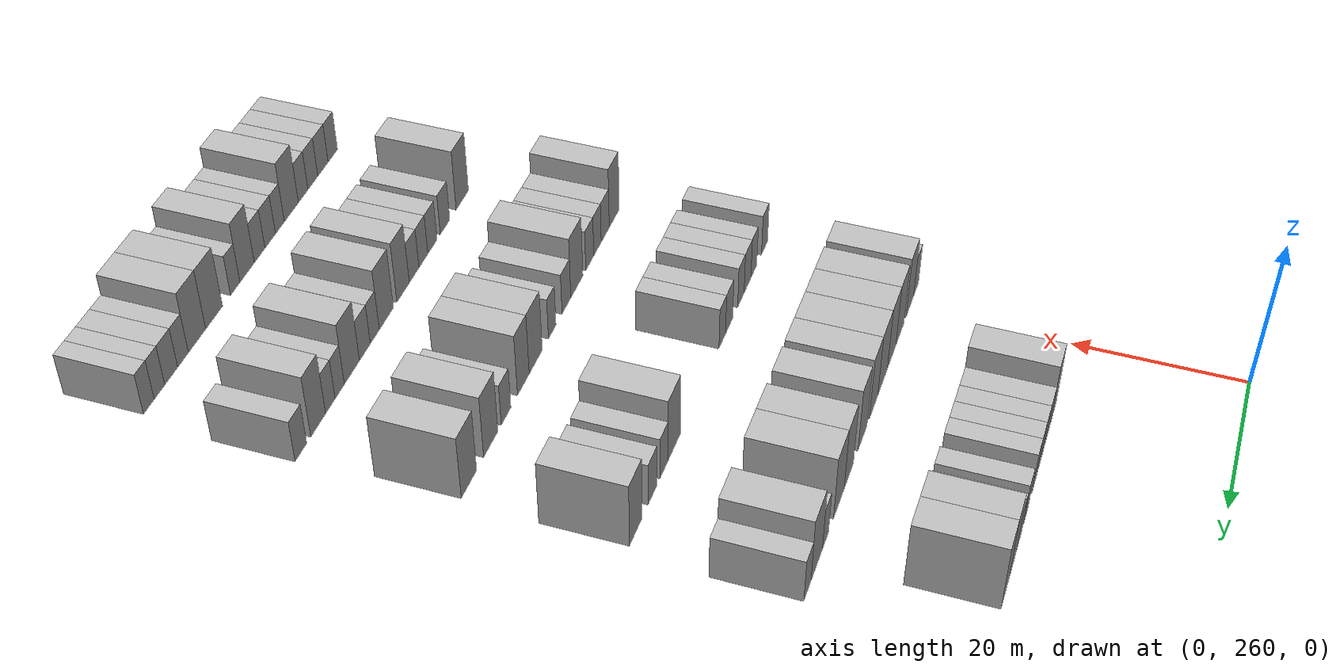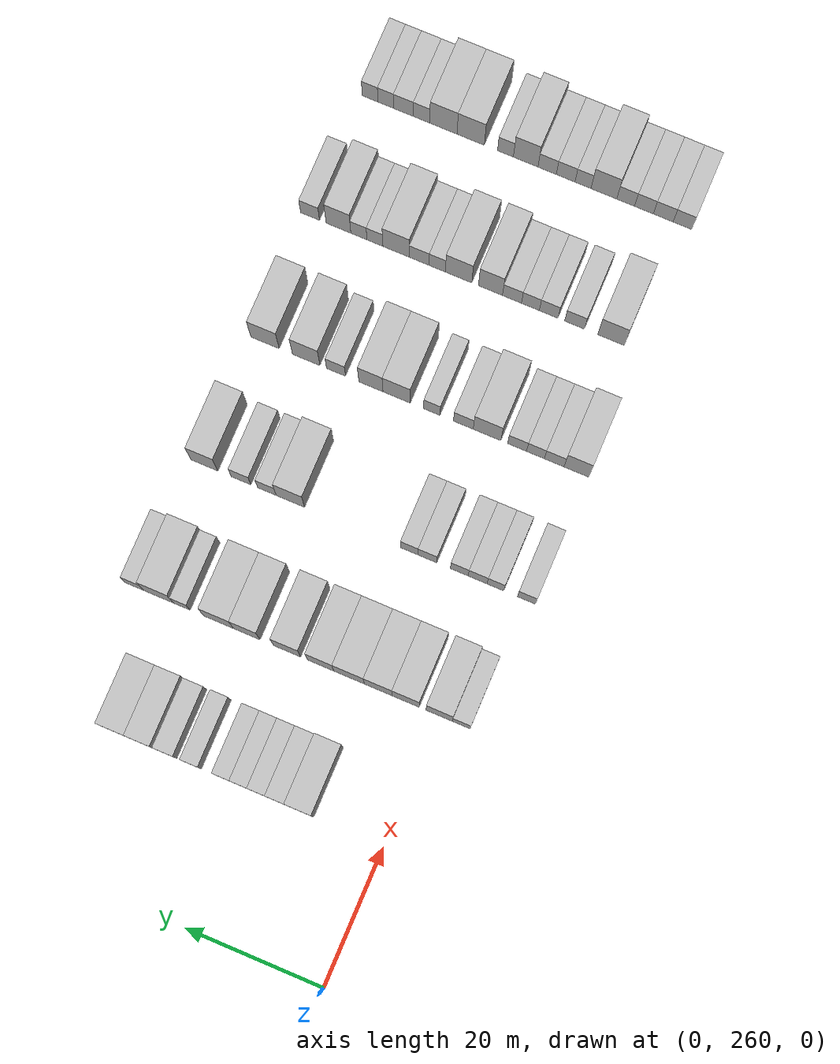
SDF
<sdf version="1.6">
 <world name="default">
  <model name="building_146">
   <static>1</static>
   <pose>25.0000 272.0109 0 0.000000 0.000000 0.000000</pose>
   <link name="link">
    <pose>0 0 4.50 0 0 0</pose>
    <collision name="collision"><geometry><box><size>10.0000 3.8548 9.0000</size></box></geometry></collision>
    <visual name="visual">
     <cast_shadows>0</cast_shadows>
     <geometry><box><size>10.0000 3.8548 9.0000</size></box></geometry>
     <material>
      <script>
       <uri>model://HANNAS_wall/materials/scripts</uri>
       <uri>model://HANNAS_wall/materials/textures</uri>
       <name>vrc/HANNAS_wall</name>
      </script>
     </material>
    </visual>
   </link>
  </model>
  <model name="building_147">
   <static>1</static>
   <pose>25.0000 275.4106 0 0.000000 0.000000 0.000000</pose>
   <link name="link">
    <pose>0 0 3.00 0 0 0</pose>
    <collision name="collision"><geometry><box><size>10.0000 2.9445 6.0000</size></box></geometry></collision>
    <visual name="visual">
     <cast_shadows>0</cast_shadows>
     <geometry><box><size>10.0000 2.9445 6.0000</size></box></geometry>
     <material>
      <script>
       <uri>model://HANNAS_wall/materials/scripts</uri>
       <uri>model://HANNAS_wall/materials/textures</uri>
       <name>vrc/HANNAS_wall</name>
      </script>
     </material>
    </visual>
   </link>
  </model>
  <model name="building_148">
   <static>1</static>
   <pose>25.0000 278.1679 0 0.000000 0.000000 0.000000</pose>
   <link name="link">
    <pose>0 0 3.00 0 0 0</pose>
    <collision name="collision"><geometry><box><size>10.0000 2.5701 6.0000</size></box></geometry></collision>
    <visual name="visual">
     <cast_shadows>0</cast_shadows>
     <geometry><box><size>10.0000 2.5701 6.0000</size></box></geometry>
     <material>
      <script>
       <uri>model://HANNAS_wall/materials/scripts</uri>
       <uri>model://HANNAS_wall/materials/textures</uri>
       <name>vrc/HANNAS_wall</name>
      </script>
     </material>
    </visual>
   </link>
  </model>
  <model name="building_149">
   <static>1</static>
   <pose>25.0000 280.7161 0 0.000000 0.000000 0.000000</pose>
   <link name="link">
    <pose>0 0 3.00 0 0 0</pose>
    <collision name="collision"><geometry><box><size>10.0000 2.5264 6.0000</size></box></geometry></collision>
    <visual name="visual">
     <cast_shadows>0</cast_shadows>
     <geometry><box><size>10.0000 2.5264 6.0000</size></box></geometry>
     <material>
      <script>
       <uri>model://HANNAS_wall/materials/scripts</uri>
       <uri>model://HANNAS_wall/materials/textures</uri>
       <name>vrc/HANNAS_wall</name>
      </script>
     </material>
    </visual>
   </link>
  </model>
  <model name="building_150">
   <static>1</static>
   <pose>25.0000 283.2397 0 0.000000 0.000000 0.000000</pose>
   <link name="link">
    <pose>0 0 3.00 0 0 0</pose>
    <collision name="collision"><geometry><box><size>10.0000 2.5208 6.0000</size></box></geometry></collision>
    <visual name="visual">
     <cast_shadows>0</cast_shadows>
     <geometry><box><size>10.0000 2.5208 6.0000</size></box></geometry>
     <material>
      <script>
       <uri>model://HANNAS_wall/materials/scripts</uri>
       <uri>model://HANNAS_wall/materials/textures</uri>
       <name>vrc/HANNAS_wall</name>
      </script>
     </material>
    </visual>
   </link>
  </model>
  <model name="building_151">
   <static>1</static>
   <pose>25.0000 287.7942 0 0.000000 0.000000 0.000000</pose>
   <link name="link">
    <pose>0 0 3.00 0 0 0</pose>
    <collision name="collision"><geometry><box><size>10.0000 2.5880 6.0000</size></box></geometry></collision>
    <visual name="visual">
     <cast_shadows>0</cast_shadows>
     <geometry><box><size>10.0000 2.5880 6.0000</size></box></geometry>
     <material>
      <script>
       <uri>model://HANNAS_wall/materials/scripts</uri>
       <uri>model://HANNAS_wall/materials/textures</uri>
       <name>vrc/HANNAS_wall</name>
      </script>
     </material>
    </visual>
   </link>
  </model>
  <model name="building_152">
   <static>1</static>
   <pose>25.0000 291.5689 0 0.000000 0.000000 0.000000</pose>
   <link name="link">
    <pose>0 0 3.00 0 0 0</pose>
    <collision name="collision"><geometry><box><size>10.0000 2.9614 6.0000</size></box></geometry></collision>
    <visual name="visual">
     <cast_shadows>0</cast_shadows>
     <geometry><box><size>10.0000 2.9614 6.0000</size></box></geometry>
     <material>
      <script>
       <uri>model://HANNAS_wall/materials/scripts</uri>
       <uri>model://HANNAS_wall/materials/textures</uri>
       <name>vrc/HANNAS_wall</name>
      </script>
     </material>
    </visual>
   </link>
  </model>
  <model name="building_153">
   <static>1</static>
   <pose>25.0000 294.9100 0 0.000000 0.000000 0.000000</pose>
   <link name="link">
    <pose>0 0 4.50 0 0 0</pose>
    <collision name="collision"><geometry><box><size>10.0000 3.7209 9.0000</size></box></geometry></collision>
    <visual name="visual">
     <cast_shadows>0</cast_shadows>
     <geometry><box><size>10.0000 3.7209 9.0000</size></box></geometry>
     <material>
      <script>
       <uri>model://HANNAS_wall/materials/scripts</uri>
       <uri>model://HANNAS_wall/materials/textures</uri>
       <name>vrc/HANNAS_wall</name>
      </script>
     </material>
    </visual>
   </link>
  </model>
  <model name="building_154">
   <static>1</static>
   <pose>25.0000 298.8138 0 0.000000 0.000000 0.000000</pose>
   <link name="link">
    <pose>0 0 4.50 0 0 0</pose>
    <collision name="collision"><geometry><box><size>10.0000 4.0865 9.0000</size></box></geometry></collision>
    <visual name="visual">
     <cast_shadows>0</cast_shadows>
     <geometry><box><size>10.0000 4.0865 9.0000</size></box></geometry>
     <material>
      <script>
       <uri>model://HANNAS_wall/materials/scripts</uri>
       <uri>model://HANNAS_wall/materials/textures</uri>
       <name>vrc/HANNAS_wall</name>
      </script>
     </material>
    </visual>
   </link>
  </model>
  <model name="building_317">
   <static>1</static>
   <pose>44.0000 256.6903 0 0.000000 0.000000 0.000000</pose>
   <link name="link">
    <pose>0 0 3.00 0 0 0</pose>
    <collision name="collision"><geometry><box><size>10.0000 2.5984 6.0000</size></box></geometry></collision>
    <visual name="visual">
     <cast_shadows>0</cast_shadows>
     <geometry><box><size>10.0000 2.5984 6.0000</size></box></geometry>
     <material>
      <script>
       <uri>model://HANNAS_wall/materials/scripts</uri>
       <uri>model://HANNAS_wall/materials/textures</uri>
       <name>vrc/HANNAS_wall</name>
      </script>
     </material>
    </visual>
   </link>
  </model>
  <model name="building_318">
   <static>1</static>
   <pose>44.0000 259.9078 0 0.000000 0.000000 0.000000</pose>
   <link name="link">
    <pose>0 0 4.50 0 0 0</pose>
    <collision name="collision"><geometry><box><size>10.0000 3.8366 9.0000</size></box></geometry></collision>
    <visual name="visual">
     <cast_shadows>0</cast_shadows>
     <geometry><box><size>10.0000 3.8366 9.0000</size></box></geometry>
     <material>
      <script>
       <uri>model://HANNAS_wall/materials/scripts</uri>
       <uri>model://HANNAS_wall/materials/textures</uri>
       <name>vrc/HANNAS_wall</name>
      </script>
     </material>
    </visual>
   </link>
  </model>
  <model name="building_319">
   <static>1</static>
   <pose>44.0000 264.7968 0 0.000000 0.000000 0.000000</pose>
   <link name="link">
    <pose>0 0 4.50 0 0 0</pose>
    <collision name="collision"><geometry><box><size>10.0000 3.9414 9.0000</size></box></geometry></collision>
    <visual name="visual">
     <cast_shadows>0</cast_shadows>
     <geometry><box><size>10.0000 3.9414 9.0000</size></box></geometry>
     <material>
      <script>
       <uri>model://HANNAS_wall/materials/scripts</uri>
       <uri>model://HANNAS_wall/materials/textures</uri>
       <name>vrc/HANNAS_wall</name>
      </script>
     </material>
    </visual>
   </link>
  </model>
  <model name="building_320">
   <static>1</static>
   <pose>44.0000 268.8081 0 0.000000 0.000000 0.000000</pose>
   <link name="link">
    <pose>0 0 4.50 0 0 0</pose>
    <collision name="collision"><geometry><box><size>10.0000 4.0811 9.0000</size></box></geometry></collision>
    <visual name="visual">
     <cast_shadows>0</cast_shadows>
     <geometry><box><size>10.0000 4.0811 9.0000</size></box></geometry>
     <material>
      <script>
       <uri>model://HANNAS_wall/materials/scripts</uri>
       <uri>model://HANNAS_wall/materials/textures</uri>
       <name>vrc/HANNAS_wall</name>
      </script>
     </material>
    </visual>
   </link>
  </model>
  <model name="building_321">
   <static>1</static>
   <pose>44.0000 273.0856 0 0.000000 0.000000 0.000000</pose>
   <link name="link">
    <pose>0 0 4.50 0 0 0</pose>
    <collision name="collision"><geometry><box><size>10.0000 4.4741 9.0000</size></box></geometry></collision>
    <visual name="visual">
     <cast_shadows>0</cast_shadows>
     <geometry><box><size>10.0000 4.4741 9.0000</size></box></geometry>
     <material>
      <script>
       <uri>model://HANNAS_wall/materials/scripts</uri>
       <uri>model://HANNAS_wall/materials/textures</uri>
       <name>vrc/HANNAS_wall</name>
      </script>
     </material>
    </visual>
   </link>
  </model>
  <model name="building_322">
   <static>1</static>
   <pose>44.0000 277.2648 0 0.000000 0.000000 0.000000</pose>
   <link name="link">
    <pose>0 0 4.50 0 0 0</pose>
    <collision name="collision"><geometry><box><size>10.0000 3.8842 9.0000</size></box></geometry></collision>
    <visual name="visual">
     <cast_shadows>0</cast_shadows>
     <geometry><box><size>10.0000 3.8842 9.0000</size></box></geometry>
     <material>
      <script>
       <uri>model://HANNAS_wall/materials/scripts</uri>
       <uri>model://HANNAS_wall/materials/textures</uri>
       <name>vrc/HANNAS_wall</name>
      </script>
     </material>
    </visual>
   </link>
  </model>
  <model name="building_323">
   <static>1</static>
   <pose>44.0000 282.1938 0 0.000000 0.000000 0.000000</pose>
   <link name="link">
    <pose>0 0 4.50 0 0 0</pose>
    <collision name="collision"><geometry><box><size>10.0000 3.9739 9.0000</size></box></geometry></collision>
    <visual name="visual">
     <cast_shadows>0</cast_shadows>
     <geometry><box><size>10.0000 3.9739 9.0000</size></box></geometry>
     <material>
      <script>
       <uri>model://HANNAS_wall/materials/scripts</uri>
       <uri>model://HANNAS_wall/materials/textures</uri>
       <name>vrc/HANNAS_wall</name>
      </script>
     </material>
    </visual>
   </link>
  </model>
  <model name="building_324">
   <static>1</static>
   <pose>44.0000 288.1492 0 0.000000 0.000000 0.000000</pose>
   <link name="link">
    <pose>0 0 4.50 0 0 0</pose>
    <collision name="collision"><geometry><box><size>10.0000 3.9369 9.0000</size></box></geometry></collision>
    <visual name="visual">
     <cast_shadows>0</cast_shadows>
     <geometry><box><size>10.0000 3.9369 9.0000</size></box></geometry>
     <material>
      <script>
       <uri>model://HANNAS_wall/materials/scripts</uri>
       <uri>model://HANNAS_wall/materials/textures</uri>
       <name>vrc/HANNAS_wall</name>
      </script>
     </material>
    </visual>
   </link>
  </model>
  <model name="building_325">
   <static>1</static>
   <pose>44.0000 292.3224 0 0.000000 0.000000 0.000000</pose>
   <link name="link">
    <pose>0 0 4.50 0 0 0</pose>
    <collision name="collision"><geometry><box><size>10.0000 4.4095 9.0000</size></box></geometry></collision>
    <visual name="visual">
     <cast_shadows>0</cast_shadows>
     <geometry><box><size>10.0000 4.4095 9.0000</size></box></geometry>
     <material>
      <script>
       <uri>model://HANNAS_wall/materials/scripts</uri>
       <uri>model://HANNAS_wall/materials/textures</uri>
       <name>vrc/HANNAS_wall</name>
      </script>
     </material>
    </visual>
   </link>
  </model>
  <model name="building_326">
   <static>1</static>
   <pose>44.0000 297.7490 0 0.000000 0.000000 0.000000</pose>
   <link name="link">
    <pose>0 0 3.00 0 0 0</pose>
    <collision name="collision"><geometry><box><size>10.0000 2.4437 6.0000</size></box></geometry></collision>
    <visual name="visual">
     <cast_shadows>0</cast_shadows>
     <geometry><box><size>10.0000 2.4437 6.0000</size></box></geometry>
     <material>
      <script>
       <uri>model://HANNAS_wall/materials/scripts</uri>
       <uri>model://HANNAS_wall/materials/textures</uri>
       <name>vrc/HANNAS_wall</name>
      </script>
     </material>
    </visual>
   </link>
  </model>
  <model name="building_327">
   <static>1</static>
   <pose>44.0000 301.1935 0 0.000000 0.000000 0.000000</pose>
   <link name="link">
    <pose>0 0 4.50 0 0 0</pose>
    <collision name="collision"><geometry><box><size>10.0000 4.4454 9.0000</size></box></geometry></collision>
    <visual name="visual">
     <cast_shadows>0</cast_shadows>
     <geometry><box><size>10.0000 4.4454 9.0000</size></box></geometry>
     <material>
      <script>
       <uri>model://HANNAS_wall/materials/scripts</uri>
       <uri>model://HANNAS_wall/materials/textures</uri>
       <name>vrc/HANNAS_wall</name>
      </script>
     </material>
    </visual>
   </link>
  </model>
  <model name="building_328">
   <static>1</static>
   <pose>44.0000 304.7822 0 0.000000 0.000000 0.000000</pose>
   <link name="link">
    <pose>0 0 3.00 0 0 0</pose>
    <collision name="collision"><geometry><box><size>10.0000 2.7319 6.0000</size></box></geometry></collision>
    <visual name="visual">
     <cast_shadows>0</cast_shadows>
     <geometry><box><size>10.0000 2.7319 6.0000</size></box></geometry>
     <material>
      <script>
       <uri>model://HANNAS_wall/materials/scripts</uri>
       <uri>model://HANNAS_wall/materials/textures</uri>
       <name>vrc/HANNAS_wall</name>
      </script>
     </material>
    </visual>
   </link>
  </model>
  <model name="building_491">
   <static>1</static>
   <pose>63.0000 255.0812 0 0.000000 0.000000 0.000000</pose>
   <link name="link">
    <pose>0 0 3.00 0 0 0</pose>
    <collision name="collision"><geometry><box><size>10.0000 2.6312 6.0000</size></box></geometry></collision>
    <visual name="visual">
     <cast_shadows>0</cast_shadows>
     <geometry><box><size>10.0000 2.6312 6.0000</size></box></geometry>
     <material>
      <script>
       <uri>model://HANNAS_wall/materials/scripts</uri>
       <uri>model://HANNAS_wall/materials/textures</uri>
       <name>vrc/HANNAS_wall</name>
      </script>
     </material>
    </visual>
   </link>
  </model>
  <model name="building_492">
   <static>1</static>
   <pose>63.0000 259.6245 0 0.000000 0.000000 0.000000</pose>
   <link name="link">
    <pose>0 0 3.00 0 0 0</pose>
    <collision name="collision"><geometry><box><size>10.0000 2.4554 6.0000</size></box></geometry></collision>
    <visual name="visual">
     <cast_shadows>0</cast_shadows>
     <geometry><box><size>10.0000 2.4554 6.0000</size></box></geometry>
     <material>
      <script>
       <uri>model://HANNAS_wall/materials/scripts</uri>
       <uri>model://HANNAS_wall/materials/textures</uri>
       <name>vrc/HANNAS_wall</name>
      </script>
     </material>
    </visual>
   </link>
  </model>
  <model name="building_493">
   <static>1</static>
   <pose>63.0000 262.2477 0 0.000000 0.000000 0.000000</pose>
   <link name="link">
    <pose>0 0 3.00 0 0 0</pose>
    <collision name="collision"><geometry><box><size>10.0000 2.7911 6.0000</size></box></geometry></collision>
    <visual name="visual">
     <cast_shadows>0</cast_shadows>
     <geometry><box><size>10.0000 2.7911 6.0000</size></box></geometry>
     <material>
      <script>
       <uri>model://HANNAS_wall/materials/scripts</uri>
       <uri>model://HANNAS_wall/materials/textures</uri>
       <name>vrc/HANNAS_wall</name>
      </script>
     </material>
    </visual>
   </link>
  </model>
  <model name="building_494">
   <static>1</static>
   <pose>63.0000 264.9496 0 0.000000 0.000000 0.000000</pose>
   <link name="link">
    <pose>0 0 3.00 0 0 0</pose>
    <collision name="collision"><geometry><box><size>10.0000 2.6128 6.0000</size></box></geometry></collision>
    <visual name="visual">
     <cast_shadows>0</cast_shadows>
     <geometry><box><size>10.0000 2.6128 6.0000</size></box></geometry>
     <material>
      <script>
       <uri>model://HANNAS_wall/materials/scripts</uri>
       <uri>model://HANNAS_wall/materials/textures</uri>
       <name>vrc/HANNAS_wall</name>
      </script>
     </material>
    </visual>
   </link>
  </model>
  <model name="building_495">
   <static>1</static>
   <pose>63.0000 269.6488 0 0.000000 0.000000 0.000000</pose>
   <link name="link">
    <pose>0 0 3.00 0 0 0</pose>
    <collision name="collision"><geometry><box><size>10.0000 2.7855 6.0000</size></box></geometry></collision>
    <visual name="visual">
     <cast_shadows>0</cast_shadows>
     <geometry><box><size>10.0000 2.7855 6.0000</size></box></geometry>
     <material>
      <script>
       <uri>model://HANNAS_wall/materials/scripts</uri>
       <uri>model://HANNAS_wall/materials/textures</uri>
       <name>vrc/HANNAS_wall</name>
      </script>
     </material>
    </visual>
   </link>
  </model>
  <model name="building_496">
   <static>1</static>
   <pose>63.0000 272.3262 0 0.000000 0.000000 0.000000</pose>
   <link name="link">
    <pose>0 0 3.00 0 0 0</pose>
    <collision name="collision"><geometry><box><size>10.0000 2.5694 6.0000</size></box></geometry></collision>
    <visual name="visual">
     <cast_shadows>0</cast_shadows>
     <geometry><box><size>10.0000 2.5694 6.0000</size></box></geometry>
     <material>
      <script>
       <uri>model://HANNAS_wall/materials/scripts</uri>
       <uri>model://HANNAS_wall/materials/textures</uri>
       <name>vrc/HANNAS_wall</name>
      </script>
     </material>
    </visual>
   </link>
  </model>
  <model name="building_497">
   <static>1</static>
   <pose>63.0000 289.9676 0 0.000000 0.000000 0.000000</pose>
   <link name="link">
    <pose>0 0 4.50 0 0 0</pose>
    <collision name="collision"><geometry><box><size>10.0000 4.2378 9.0000</size></box></geometry></collision>
    <visual name="visual">
     <cast_shadows>0</cast_shadows>
     <geometry><box><size>10.0000 4.2378 9.0000</size></box></geometry>
     <material>
      <script>
       <uri>model://HANNAS_wall/materials/scripts</uri>
       <uri>model://HANNAS_wall/materials/textures</uri>
       <name>vrc/HANNAS_wall</name>
      </script>
     </material>
    </visual>
   </link>
  </model>
  <model name="building_498">
   <static>1</static>
   <pose>63.0000 293.4671 0 0.000000 0.000000 0.000000</pose>
   <link name="link">
    <pose>0 0 3.00 0 0 0</pose>
    <collision name="collision"><geometry><box><size>10.0000 2.7613 6.0000</size></box></geometry></collision>
    <visual name="visual">
     <cast_shadows>0</cast_shadows>
     <geometry><box><size>10.0000 2.7613 6.0000</size></box></geometry>
     <material>
      <script>
       <uri>model://HANNAS_wall/materials/scripts</uri>
       <uri>model://HANNAS_wall/materials/textures</uri>
       <name>vrc/HANNAS_wall</name>
      </script>
     </material>
    </visual>
   </link>
  </model>
  <model name="building_499">
   <static>1</static>
   <pose>63.0000 297.3141 0 0.000000 0.000000 0.000000</pose>
   <link name="link">
    <pose>0 0 3.00 0 0 0</pose>
    <collision name="collision"><geometry><box><size>10.0000 2.9326 6.0000</size></box></geometry></collision>
    <visual name="visual">
     <cast_shadows>0</cast_shadows>
     <geometry><box><size>10.0000 2.9326 6.0000</size></box></geometry>
     <material>
      <script>
       <uri>model://HANNAS_wall/materials/scripts</uri>
       <uri>model://HANNAS_wall/materials/textures</uri>
       <name>vrc/HANNAS_wall</name>
      </script>
     </material>
    </visual>
   </link>
  </model>
  <model name="building_500">
   <static>1</static>
   <pose>63.0000 302.7916 0 0.000000 0.000000 0.000000</pose>
   <link name="link">
    <pose>0 0 4.50 0 0 0</pose>
    <collision name="collision"><geometry><box><size>10.0000 4.0225 9.0000</size></box></geometry></collision>
    <visual name="visual">
     <cast_shadows>0</cast_shadows>
     <geometry><box><size>10.0000 4.0225 9.0000</size></box></geometry>
     <material>
      <script>
       <uri>model://HANNAS_wall/materials/scripts</uri>
       <uri>model://HANNAS_wall/materials/textures</uri>
       <name>vrc/HANNAS_wall</name>
      </script>
     </material>
    </visual>
   </link>
  </model>
  <model name="building_674">
   <static>1</static>
   <pose>82.0000 255.5393 0 0.000000 0.000000 0.000000</pose>
   <link name="link">
    <pose>0 0 4.50 0 0 0</pose>
    <collision name="collision"><geometry><box><size>10.0000 3.6672 9.0000</size></box></geometry></collision>
    <visual name="visual">
     <cast_shadows>0</cast_shadows>
     <geometry><box><size>10.0000 3.6672 9.0000</size></box></geometry>
     <material>
      <script>
       <uri>model://HANNAS_wall/materials/scripts</uri>
       <uri>model://HANNAS_wall/materials/textures</uri>
       <name>vrc/HANNAS_wall</name>
      </script>
     </material>
    </visual>
   </link>
  </model>
  <model name="building_675">
   <static>1</static>
   <pose>82.0000 258.8301 0 0.000000 0.000000 0.000000</pose>
   <link name="link">
    <pose>0 0 3.00 0 0 0</pose>
    <collision name="collision"><geometry><box><size>10.0000 2.9145 6.0000</size></box></geometry></collision>
    <visual name="visual">
     <cast_shadows>0</cast_shadows>
     <geometry><box><size>10.0000 2.9145 6.0000</size></box></geometry>
     <material>
      <script>
       <uri>model://HANNAS_wall/materials/scripts</uri>
       <uri>model://HANNAS_wall/materials/textures</uri>
       <name>vrc/HANNAS_wall</name>
      </script>
     </material>
    </visual>
   </link>
  </model>
  <model name="building_676">
   <static>1</static>
   <pose>82.0000 261.6066 0 0.000000 0.000000 0.000000</pose>
   <link name="link">
    <pose>0 0 3.00 0 0 0</pose>
    <collision name="collision"><geometry><box><size>10.0000 2.6386 6.0000</size></box></geometry></collision>
    <visual name="visual">
     <cast_shadows>0</cast_shadows>
     <geometry><box><size>10.0000 2.6386 6.0000</size></box></geometry>
     <material>
      <script>
       <uri>model://HANNAS_wall/materials/scripts</uri>
       <uri>model://HANNAS_wall/materials/textures</uri>
       <name>vrc/HANNAS_wall</name>
      </script>
     </material>
    </visual>
   </link>
  </model>
  <model name="building_677">
   <static>1</static>
   <pose>82.0000 264.3312 0 0.000000 0.000000 0.000000</pose>
   <link name="link">
    <pose>0 0 3.00 0 0 0</pose>
    <collision name="collision"><geometry><box><size>10.0000 2.8105 6.0000</size></box></geometry></collision>
    <visual name="visual">
     <cast_shadows>0</cast_shadows>
     <geometry><box><size>10.0000 2.8105 6.0000</size></box></geometry>
     <material>
      <script>
       <uri>model://HANNAS_wall/materials/scripts</uri>
       <uri>model://HANNAS_wall/materials/textures</uri>
       <name>vrc/HANNAS_wall</name>
      </script>
     </material>
    </visual>
   </link>
  </model>
  <model name="building_678">
   <static>1</static>
   <pose>82.0000 268.7924 0 0.000000 0.000000 0.000000</pose>
   <link name="link">
    <pose>0 0 4.50 0 0 0</pose>
    <collision name="collision"><geometry><box><size>10.0000 4.1120 9.0000</size></box></geometry></collision>
    <visual name="visual">
     <cast_shadows>0</cast_shadows>
     <geometry><box><size>10.0000 4.1120 9.0000</size></box></geometry>
     <material>
      <script>
       <uri>model://HANNAS_wall/materials/scripts</uri>
       <uri>model://HANNAS_wall/materials/textures</uri>
       <name>vrc/HANNAS_wall</name>
      </script>
     </material>
    </visual>
   </link>
  </model>
  <model name="building_679">
   <static>1</static>
   <pose>82.0000 272.3182 0 0.000000 0.000000 0.000000</pose>
   <link name="link">
    <pose>0 0 3.00 0 0 0</pose>
    <collision name="collision"><geometry><box><size>10.0000 2.9397 6.0000</size></box></geometry></collision>
    <visual name="visual">
     <cast_shadows>0</cast_shadows>
     <geometry><box><size>10.0000 2.9397 6.0000</size></box></geometry>
     <material>
      <script>
       <uri>model://HANNAS_wall/materials/scripts</uri>
       <uri>model://HANNAS_wall/materials/textures</uri>
       <name>vrc/HANNAS_wall</name>
      </script>
     </material>
    </visual>
   </link>
  </model>
  <model name="building_680">
   <static>1</static>
   <pose>82.0000 277.0066 0 0.000000 0.000000 0.000000</pose>
   <link name="link">
    <pose>0 0 3.00 0 0 0</pose>
    <collision name="collision"><geometry><box><size>10.0000 2.4371 6.0000</size></box></geometry></collision>
    <visual name="visual">
     <cast_shadows>0</cast_shadows>
     <geometry><box><size>10.0000 2.4371 6.0000</size></box></geometry>
     <material>
      <script>
       <uri>model://HANNAS_wall/materials/scripts</uri>
       <uri>model://HANNAS_wall/materials/textures</uri>
       <name>vrc/HANNAS_wall</name>
      </script>
     </material>
    </visual>
   </link>
  </model>
  <model name="building_681">
   <static>1</static>
   <pose>82.0000 282.2730 0 0.000000 0.000000 0.000000</pose>
   <link name="link">
    <pose>0 0 4.50 0 0 0</pose>
    <collision name="collision"><geometry><box><size>10.0000 4.0955 9.0000</size></box></geometry></collision>
    <visual name="visual">
     <cast_shadows>0</cast_shadows>
     <geometry><box><size>10.0000 4.0955 9.0000</size></box></geometry>
     <material>
      <script>
       <uri>model://HANNAS_wall/materials/scripts</uri>
       <uri>model://HANNAS_wall/materials/textures</uri>
       <name>vrc/HANNAS_wall</name>
      </script>
     </material>
    </visual>
   </link>
  </model>
  <model name="building_682">
   <static>1</static>
   <pose>82.0000 286.1250 0 0.000000 0.000000 0.000000</pose>
   <link name="link">
    <pose>0 0 4.50 0 0 0</pose>
    <collision name="collision"><geometry><box><size>10.0000 3.6085 9.0000</size></box></geometry></collision>
    <visual name="visual">
     <cast_shadows>0</cast_shadows>
     <geometry><box><size>10.0000 3.6085 9.0000</size></box></geometry>
     <material>
      <script>
       <uri>model://HANNAS_wall/materials/scripts</uri>
       <uri>model://HANNAS_wall/materials/textures</uri>
       <name>vrc/HANNAS_wall</name>
      </script>
     </material>
    </visual>
   </link>
  </model>
  <model name="building_683">
   <static>1</static>
   <pose>82.0000 291.3508 0 0.000000 0.000000 0.000000</pose>
   <link name="link">
    <pose>0 0 3.00 0 0 0</pose>
    <collision name="collision"><geometry><box><size>10.0000 2.8431 6.0000</size></box></geometry></collision>
    <visual name="visual">
     <cast_shadows>0</cast_shadows>
     <geometry><box><size>10.0000 2.8431 6.0000</size></box></geometry>
     <material>
      <script>
       <uri>model://HANNAS_wall/materials/scripts</uri>
       <uri>model://HANNAS_wall/materials/textures</uri>
       <name>vrc/HANNAS_wall</name>
      </script>
     </material>
    </visual>
   </link>
  </model>
  <model name="building_684">
   <static>1</static>
   <pose>82.0000 295.8358 0 0.000000 0.000000 0.000000</pose>
   <link name="link">
    <pose>0 0 4.50 0 0 0</pose>
    <collision name="collision"><geometry><box><size>10.0000 4.1269 9.0000</size></box></geometry></collision>
    <visual name="visual">
     <cast_shadows>0</cast_shadows>
     <geometry><box><size>10.0000 4.1269 9.0000</size></box></geometry>
     <material>
      <script>
       <uri>model://HANNAS_wall/materials/scripts</uri>
       <uri>model://HANNAS_wall/materials/textures</uri>
       <name>vrc/HANNAS_wall</name>
      </script>
     </material>
    </visual>
   </link>
  </model>
  <model name="building_685">
   <static>1</static>
   <pose>82.0000 302.0312 0 0.000000 0.000000 0.000000</pose>
   <link name="link">
    <pose>0 0 4.50 0 0 0</pose>
    <collision name="collision"><geometry><box><size>10.0000 4.2641 9.0000</size></box></geometry></collision>
    <visual name="visual">
     <cast_shadows>0</cast_shadows>
     <geometry><box><size>10.0000 4.2641 9.0000</size></box></geometry>
     <material>
      <script>
       <uri>model://HANNAS_wall/materials/scripts</uri>
       <uri>model://HANNAS_wall/materials/textures</uri>
       <name>vrc/HANNAS_wall</name>
      </script>
     </material>
    </visual>
   </link>
  </model>
  <model name="building_842">
   <static>1</static>
   <pose>101.0000 258.1481 0 0.000000 0.000000 0.000000</pose>
   <link name="link">
    <pose>0 0 4.50 0 0 0</pose>
    <collision name="collision"><geometry><box><size>10.0000 3.9532 9.0000</size></box></geometry></collision>
    <visual name="visual">
     <cast_shadows>0</cast_shadows>
     <geometry><box><size>10.0000 3.9532 9.0000</size></box></geometry>
     <material>
      <script>
       <uri>model://HANNAS_wall/materials/scripts</uri>
       <uri>model://HANNAS_wall/materials/textures</uri>
       <name>vrc/HANNAS_wall</name>
      </script>
     </material>
    </visual>
   </link>
  </model>
  <model name="building_843">
   <static>1</static>
   <pose>101.0000 263.6043 0 0.000000 0.000000 0.000000</pose>
   <link name="link">
    <pose>0 0 3.00 0 0 0</pose>
    <collision name="collision"><geometry><box><size>10.0000 2.9592 6.0000</size></box></geometry></collision>
    <visual name="visual">
     <cast_shadows>0</cast_shadows>
     <geometry><box><size>10.0000 2.9592 6.0000</size></box></geometry>
     <material>
      <script>
       <uri>model://HANNAS_wall/materials/scripts</uri>
       <uri>model://HANNAS_wall/materials/textures</uri>
       <name>vrc/HANNAS_wall</name>
      </script>
     </material>
    </visual>
   </link>
  </model>
  <model name="building_844">
   <static>1</static>
   <pose>101.0000 267.4794 0 0.000000 0.000000 0.000000</pose>
   <link name="link">
    <pose>0 0 3.00 0 0 0</pose>
    <collision name="collision"><geometry><box><size>10.0000 2.7911 6.0000</size></box></geometry></collision>
    <visual name="visual">
     <cast_shadows>0</cast_shadows>
     <geometry><box><size>10.0000 2.7911 6.0000</size></box></geometry>
     <material>
      <script>
       <uri>model://HANNAS_wall/materials/scripts</uri>
       <uri>model://HANNAS_wall/materials/textures</uri>
       <name>vrc/HANNAS_wall</name>
      </script>
     </material>
    </visual>
   </link>
  </model>
  <model name="building_845">
   <static>1</static>
   <pose>101.0000 270.2138 0 0.000000 0.000000 0.000000</pose>
   <link name="link">
    <pose>0 0 3.00 0 0 0</pose>
    <collision name="collision"><geometry><box><size>10.0000 2.6776 6.0000</size></box></geometry></collision>
    <visual name="visual">
     <cast_shadows>0</cast_shadows>
     <geometry><box><size>10.0000 2.6776 6.0000</size></box></geometry>
     <material>
      <script>
       <uri>model://HANNAS_wall/materials/scripts</uri>
       <uri>model://HANNAS_wall/materials/textures</uri>
       <name>vrc/HANNAS_wall</name>
      </script>
     </material>
    </visual>
   </link>
  </model>
  <model name="building_846">
   <static>1</static>
   <pose>101.0000 272.9786 0 0.000000 0.000000 0.000000</pose>
   <link name="link">
    <pose>0 0 3.00 0 0 0</pose>
    <collision name="collision"><geometry><box><size>10.0000 2.8521 6.0000</size></box></geometry></collision>
    <visual name="visual">
     <cast_shadows>0</cast_shadows>
     <geometry><box><size>10.0000 2.8521 6.0000</size></box></geometry>
     <material>
      <script>
       <uri>model://HANNAS_wall/materials/scripts</uri>
       <uri>model://HANNAS_wall/materials/textures</uri>
       <name>vrc/HANNAS_wall</name>
      </script>
     </material>
    </visual>
   </link>
  </model>
  <model name="building_847">
   <static>1</static>
   <pose>101.0000 276.2063 0 0.000000 0.000000 0.000000</pose>
   <link name="link">
    <pose>0 0 4.50 0 0 0</pose>
    <collision name="collision"><geometry><box><size>10.0000 3.6032 9.0000</size></box></geometry></collision>
    <visual name="visual">
     <cast_shadows>0</cast_shadows>
     <geometry><box><size>10.0000 3.6032 9.0000</size></box></geometry>
     <material>
      <script>
       <uri>model://HANNAS_wall/materials/scripts</uri>
       <uri>model://HANNAS_wall/materials/textures</uri>
       <name>vrc/HANNAS_wall</name>
      </script>
     </material>
    </visual>
   </link>
  </model>
  <model name="building_848">
   <static>1</static>
   <pose>101.0000 280.9955 0 0.000000 0.000000 0.000000</pose>
   <link name="link">
    <pose>0 0 4.50 0 0 0</pose>
    <collision name="collision"><geometry><box><size>10.0000 3.9752 9.0000</size></box></geometry></collision>
    <visual name="visual">
     <cast_shadows>0</cast_shadows>
     <geometry><box><size>10.0000 3.9752 9.0000</size></box></geometry>
     <material>
      <script>
       <uri>model://HANNAS_wall/materials/scripts</uri>
       <uri>model://HANNAS_wall/materials/textures</uri>
       <name>vrc/HANNAS_wall</name>
      </script>
     </material>
    </visual>
   </link>
  </model>
  <model name="building_849">
   <static>1</static>
   <pose>101.0000 284.2187 0 0.000000 0.000000 0.000000</pose>
   <link name="link">
    <pose>0 0 3.00 0 0 0</pose>
    <collision name="collision"><geometry><box><size>10.0000 2.4714 6.0000</size></box></geometry></collision>
    <visual name="visual">
     <cast_shadows>0</cast_shadows>
     <geometry><box><size>10.0000 2.4714 6.0000</size></box></geometry>
     <material>
      <script>
       <uri>model://HANNAS_wall/materials/scripts</uri>
       <uri>model://HANNAS_wall/materials/textures</uri>
       <name>vrc/HANNAS_wall</name>
      </script>
     </material>
    </visual>
   </link>
  </model>
  <model name="building_850">
   <static>1</static>
   <pose>101.0000 286.9313 0 0.000000 0.000000 0.000000</pose>
   <link name="link">
    <pose>0 0 3.00 0 0 0</pose>
    <collision name="collision"><geometry><box><size>10.0000 2.9538 6.0000</size></box></geometry></collision>
    <visual name="visual">
     <cast_shadows>0</cast_shadows>
     <geometry><box><size>10.0000 2.9538 6.0000</size></box></geometry>
     <material>
      <script>
       <uri>model://HANNAS_wall/materials/scripts</uri>
       <uri>model://HANNAS_wall/materials/textures</uri>
       <name>vrc/HANNAS_wall</name>
      </script>
     </material>
    </visual>
   </link>
  </model>
  <model name="building_851">
   <static>1</static>
   <pose>101.0000 290.4157 0 0.000000 0.000000 0.000000</pose>
   <link name="link">
    <pose>0 0 4.50 0 0 0</pose>
    <collision name="collision"><geometry><box><size>10.0000 4.0149 9.0000</size></box></geometry></collision>
    <visual name="visual">
     <cast_shadows>0</cast_shadows>
     <geometry><box><size>10.0000 4.0149 9.0000</size></box></geometry>
     <material>
      <script>
       <uri>model://HANNAS_wall/materials/scripts</uri>
       <uri>model://HANNAS_wall/materials/textures</uri>
       <name>vrc/HANNAS_wall</name>
      </script>
     </material>
    </visual>
   </link>
  </model>
  <model name="building_852">
   <static>1</static>
   <pose>101.0000 293.6317 0 0.000000 0.000000 0.000000</pose>
   <link name="link">
    <pose>0 0 3.00 0 0 0</pose>
    <collision name="collision"><geometry><box><size>10.0000 2.4171 6.0000</size></box></geometry></collision>
    <visual name="visual">
     <cast_shadows>0</cast_shadows>
     <geometry><box><size>10.0000 2.4171 6.0000</size></box></geometry>
     <material>
      <script>
       <uri>model://HANNAS_wall/materials/scripts</uri>
       <uri>model://HANNAS_wall/materials/textures</uri>
       <name>vrc/HANNAS_wall</name>
      </script>
     </material>
    </visual>
   </link>
  </model>
  <model name="building_853">
   <static>1</static>
   <pose>101.0000 296.0576 0 0.000000 0.000000 0.000000</pose>
   <link name="link">
    <pose>0 0 3.00 0 0 0</pose>
    <collision name="collision"><geometry><box><size>10.0000 2.4348 6.0000</size></box></geometry></collision>
    <visual name="visual">
     <cast_shadows>0</cast_shadows>
     <geometry><box><size>10.0000 2.4348 6.0000</size></box></geometry>
     <material>
      <script>
       <uri>model://HANNAS_wall/materials/scripts</uri>
       <uri>model://HANNAS_wall/materials/textures</uri>
       <name>vrc/HANNAS_wall</name>
      </script>
     </material>
    </visual>
   </link>
  </model>
  <model name="building_854">
   <static>1</static>
   <pose>101.0000 299.1497 0 0.000000 0.000000 0.000000</pose>
   <link name="link">
    <pose>0 0 4.50 0 0 0</pose>
    <collision name="collision"><geometry><box><size>10.0000 3.7493 9.0000</size></box></geometry></collision>
    <visual name="visual">
     <cast_shadows>0</cast_shadows>
     <geometry><box><size>10.0000 3.7493 9.0000</size></box></geometry>
     <material>
      <script>
       <uri>model://HANNAS_wall/materials/scripts</uri>
       <uri>model://HANNAS_wall/materials/textures</uri>
       <name>vrc/HANNAS_wall</name>
      </script>
     </material>
    </visual>
   </link>
  </model>
  <model name="building_855">
   <static>1</static>
   <pose>101.0000 303.4580 0 0.000000 0.000000 0.000000</pose>
   <link name="link">
    <pose>0 0 3.00 0 0 0</pose>
    <collision name="collision"><geometry><box><size>10.0000 2.8673 6.0000</size></box></geometry></collision>
    <visual name="visual">
     <cast_shadows>0</cast_shadows>
     <geometry><box><size>10.0000 2.8673 6.0000</size></box></geometry>
     <material>
      <script>
       <uri>model://HANNAS_wall/materials/scripts</uri>
       <uri>model://HANNAS_wall/materials/textures</uri>
       <name>vrc/HANNAS_wall</name>
      </script>
     </material>
    </visual>
   </link>
  </model>
  <model name="building_1006">
   <static>1</static>
   <pose>120.0000 255.1450 0 0.000000 0.000000 0.000000</pose>
   <link name="link">
    <pose>0 0 3.00 0 0 0</pose>
    <collision name="collision"><geometry><box><size>10.0000 2.7857 6.0000</size></box></geometry></collision>
    <visual name="visual">
     <cast_shadows>0</cast_shadows>
     <geometry><box><size>10.0000 2.7857 6.0000</size></box></geometry>
     <material>
      <script>
       <uri>model://HANNAS_wall/materials/scripts</uri>
       <uri>model://HANNAS_wall/materials/textures</uri>
       <name>vrc/HANNAS_wall</name>
      </script>
     </material>
    </visual>
   </link>
  </model>
  <model name="building_1007">
   <static>1</static>
   <pose>120.0000 258.0245 0 0.000000 0.000000 0.000000</pose>
   <link name="link">
    <pose>0 0 3.00 0 0 0</pose>
    <collision name="collision"><geometry><box><size>10.0000 2.9734 6.0000</size></box></geometry></collision>
    <visual name="visual">
     <cast_shadows>0</cast_shadows>
     <geometry><box><size>10.0000 2.9734 6.0000</size></box></geometry>
     <material>
      <script>
       <uri>model://HANNAS_wall/materials/scripts</uri>
       <uri>model://HANNAS_wall/materials/textures</uri>
       <name>vrc/HANNAS_wall</name>
      </script>
     </material>
    </visual>
   </link>
  </model>
  <model name="building_1008">
   <static>1</static>
   <pose>120.0000 260.9211 0 0.000000 0.000000 0.000000</pose>
   <link name="link">
    <pose>0 0 3.00 0 0 0</pose>
    <collision name="collision"><geometry><box><size>10.0000 2.8197 6.0000</size></box></geometry></collision>
    <visual name="visual">
     <cast_shadows>0</cast_shadows>
     <geometry><box><size>10.0000 2.8197 6.0000</size></box></geometry>
     <material>
      <script>
       <uri>model://HANNAS_wall/materials/scripts</uri>
       <uri>model://HANNAS_wall/materials/textures</uri>
       <name>vrc/HANNAS_wall</name>
      </script>
     </material>
    </visual>
   </link>
  </model>
  <model name="building_1009">
   <static>1</static>
   <pose>120.0000 263.6750 0 0.000000 0.000000 0.000000</pose>
   <link name="link">
    <pose>0 0 3.00 0 0 0</pose>
    <collision name="collision"><geometry><box><size>10.0000 2.6880 6.0000</size></box></geometry></collision>
    <visual name="visual">
     <cast_shadows>0</cast_shadows>
     <geometry><box><size>10.0000 2.6880 6.0000</size></box></geometry>
     <material>
      <script>
       <uri>model://HANNAS_wall/materials/scripts</uri>
       <uri>model://HANNAS_wall/materials/textures</uri>
       <name>vrc/HANNAS_wall</name>
      </script>
     </material>
    </visual>
   </link>
  </model>
  <model name="building_1010">
   <static>1</static>
   <pose>120.0000 266.9649 0 0.000000 0.000000 0.000000</pose>
   <link name="link">
    <pose>0 0 4.50 0 0 0</pose>
    <collision name="collision"><geometry><box><size>10.0000 3.8919 9.0000</size></box></geometry></collision>
    <visual name="visual">
     <cast_shadows>0</cast_shadows>
     <geometry><box><size>10.0000 3.8919 9.0000</size></box></geometry>
     <material>
      <script>
       <uri>model://HANNAS_wall/materials/scripts</uri>
       <uri>model://HANNAS_wall/materials/textures</uri>
       <name>vrc/HANNAS_wall</name>
      </script>
     </material>
    </visual>
   </link>
  </model>
  <model name="building_1011">
   <static>1</static>
   <pose>120.0000 270.1192 0 0.000000 0.000000 0.000000</pose>
   <link name="link">
    <pose>0 0 3.00 0 0 0</pose>
    <collision name="collision"><geometry><box><size>10.0000 2.4165 6.0000</size></box></geometry></collision>
    <visual name="visual">
     <cast_shadows>0</cast_shadows>
     <geometry><box><size>10.0000 2.4165 6.0000</size></box></geometry>
     <material>
      <script>
       <uri>model://HANNAS_wall/materials/scripts</uri>
       <uri>model://HANNAS_wall/materials/textures</uri>
       <name>vrc/HANNAS_wall</name>
      </script>
     </material>
    </visual>
   </link>
  </model>
  <model name="building_1012">
   <static>1</static>
   <pose>120.0000 272.7345 0 0.000000 0.000000 0.000000</pose>
   <link name="link">
    <pose>0 0 3.00 0 0 0</pose>
    <collision name="collision"><geometry><box><size>10.0000 2.8141 6.0000</size></box></geometry></collision>
    <visual name="visual">
     <cast_shadows>0</cast_shadows>
     <geometry><box><size>10.0000 2.8141 6.0000</size></box></geometry>
     <material>
      <script>
       <uri>model://HANNAS_wall/materials/scripts</uri>
       <uri>model://HANNAS_wall/materials/textures</uri>
       <name>vrc/HANNAS_wall</name>
      </script>
     </material>
    </visual>
   </link>
  </model>
  <model name="building_1013">
   <static>1</static>
   <pose>120.0000 275.5360 0 0.000000 0.000000 0.000000</pose>
   <link name="link">
    <pose>0 0 3.00 0 0 0</pose>
    <collision name="collision"><geometry><box><size>10.0000 2.7889 6.0000</size></box></geometry></collision>
    <visual name="visual">
     <cast_shadows>0</cast_shadows>
     <geometry><box><size>10.0000 2.7889 6.0000</size></box></geometry>
     <material>
      <script>
       <uri>model://HANNAS_wall/materials/scripts</uri>
       <uri>model://HANNAS_wall/materials/textures</uri>
       <name>vrc/HANNAS_wall</name>
      </script>
     </material>
    </visual>
   </link>
  </model>
  <model name="building_1014">
   <static>1</static>
   <pose>120.0000 278.7930 0 0.000000 0.000000 0.000000</pose>
   <link name="link">
    <pose>0 0 4.50 0 0 0</pose>
    <collision name="collision"><geometry><box><size>10.0000 3.7250 9.0000</size></box></geometry></collision>
    <visual name="visual">
     <cast_shadows>0</cast_shadows>
     <geometry><box><size>10.0000 3.7250 9.0000</size></box></geometry>
     <material>
      <script>
       <uri>model://HANNAS_wall/materials/scripts</uri>
       <uri>model://HANNAS_wall/materials/textures</uri>
       <name>vrc/HANNAS_wall</name>
      </script>
     </material>
    </visual>
   </link>
  </model>
  <model name="building_1015">
   <static>1</static>
   <pose>120.0000 281.8560 0 0.000000 0.000000 0.000000</pose>
   <link name="link">
    <pose>0 0 3.00 0 0 0</pose>
    <collision name="collision"><geometry><box><size>10.0000 2.4009 6.0000</size></box></geometry></collision>
    <visual name="visual">
     <cast_shadows>0</cast_shadows>
     <geometry><box><size>10.0000 2.4009 6.0000</size></box></geometry>
     <material>
      <script>
       <uri>model://HANNAS_wall/materials/scripts</uri>
       <uri>model://HANNAS_wall/materials/textures</uri>
       <name>vrc/HANNAS_wall</name>
      </script>
     </material>
    </visual>
   </link>
  </model>
  <model name="building_1016">
   <static>1</static>
   <pose>120.0000 287.1314 0 0.000000 0.000000 0.000000</pose>
   <link name="link">
    <pose>0 0 4.50 0 0 0</pose>
    <collision name="collision"><geometry><box><size>10.0000 4.1499 9.0000</size></box></geometry></collision>
    <visual name="visual">
     <cast_shadows>0</cast_shadows>
     <geometry><box><size>10.0000 4.1499 9.0000</size></box></geometry>
     <material>
      <script>
       <uri>model://HANNAS_wall/materials/scripts</uri>
       <uri>model://HANNAS_wall/materials/textures</uri>
       <name>vrc/HANNAS_wall</name>
      </script>
     </material>
    </visual>
   </link>
  </model>
  <model name="building_1017">
   <static>1</static>
   <pose>120.0000 291.2790 0 0.000000 0.000000 0.000000</pose>
   <link name="link">
    <pose>0 0 4.50 0 0 0</pose>
    <collision name="collision"><geometry><box><size>10.0000 4.1453 9.0000</size></box></geometry></collision>
    <visual name="visual">
     <cast_shadows>0</cast_shadows>
     <geometry><box><size>10.0000 4.1453 9.0000</size></box></geometry>
     <material>
      <script>
       <uri>model://HANNAS_wall/materials/scripts</uri>
       <uri>model://HANNAS_wall/materials/textures</uri>
       <name>vrc/HANNAS_wall</name>
      </script>
     </material>
    </visual>
   </link>
  </model>
  <model name="building_1018">
   <static>1</static>
   <pose>120.0000 294.6113 0 0.000000 0.000000 0.000000</pose>
   <link name="link">
    <pose>0 0 3.00 0 0 0</pose>
    <collision name="collision"><geometry><box><size>10.0000 2.5193 6.0000</size></box></geometry></collision>
    <visual name="visual">
     <cast_shadows>0</cast_shadows>
     <geometry><box><size>10.0000 2.5193 6.0000</size></box></geometry>
     <material>
      <script>
       <uri>model://HANNAS_wall/materials/scripts</uri>
       <uri>model://HANNAS_wall/materials/textures</uri>
       <name>vrc/HANNAS_wall</name>
      </script>
     </material>
    </visual>
   </link>
  </model>
  <model name="building_1019">
   <static>1</static>
   <pose>120.0000 297.3696 0 0.000000 0.000000 0.000000</pose>
   <link name="link">
    <pose>0 0 3.00 0 0 0</pose>
    <collision name="collision"><geometry><box><size>10.0000 2.9972 6.0000</size></box></geometry></collision>
    <visual name="visual">
     <cast_shadows>0</cast_shadows>
     <geometry><box><size>10.0000 2.9972 6.0000</size></box></geometry>
     <material>
      <script>
       <uri>model://HANNAS_wall/materials/scripts</uri>
       <uri>model://HANNAS_wall/materials/textures</uri>
       <name>vrc/HANNAS_wall</name>
      </script>
     </material>
    </visual>
   </link>
  </model>
  <model name="building_1020">
   <static>1</static>
   <pose>120.0000 300.0684 0 0.000000 0.000000 0.000000</pose>
   <link name="link">
    <pose>0 0 3.00 0 0 0</pose>
    <collision name="collision"><geometry><box><size>10.0000 2.4005 6.0000</size></box></geometry></collision>
    <visual name="visual">
     <cast_shadows>0</cast_shadows>
     <geometry><box><size>10.0000 2.4005 6.0000</size></box></geometry>
     <material>
      <script>
       <uri>model://HANNAS_wall/materials/scripts</uri>
       <uri>model://HANNAS_wall/materials/textures</uri>
       <name>vrc/HANNAS_wall</name>
      </script>
     </material>
    </visual>
   </link>
  </model>
  <model name="building_1021">
   <static>1</static>
   <pose>120.0000 302.4728 0 0.000000 0.000000 0.000000</pose>
   <link name="link">
    <pose>0 0 3.00 0 0 0</pose>
    <collision name="collision"><geometry><box><size>10.0000 2.4084 6.0000</size></box></geometry></collision>
    <visual name="visual">
     <cast_shadows>0</cast_shadows>
     <geometry><box><size>10.0000 2.4084 6.0000</size></box></geometry>
     <material>
      <script>
       <uri>model://HANNAS_wall/materials/scripts</uri>
       <uri>model://HANNAS_wall/materials/textures</uri>
       <name>vrc/HANNAS_wall</name>
      </script>
     </material>
    </visual>
   </link>
  </model>
 </world>
</sdf>
